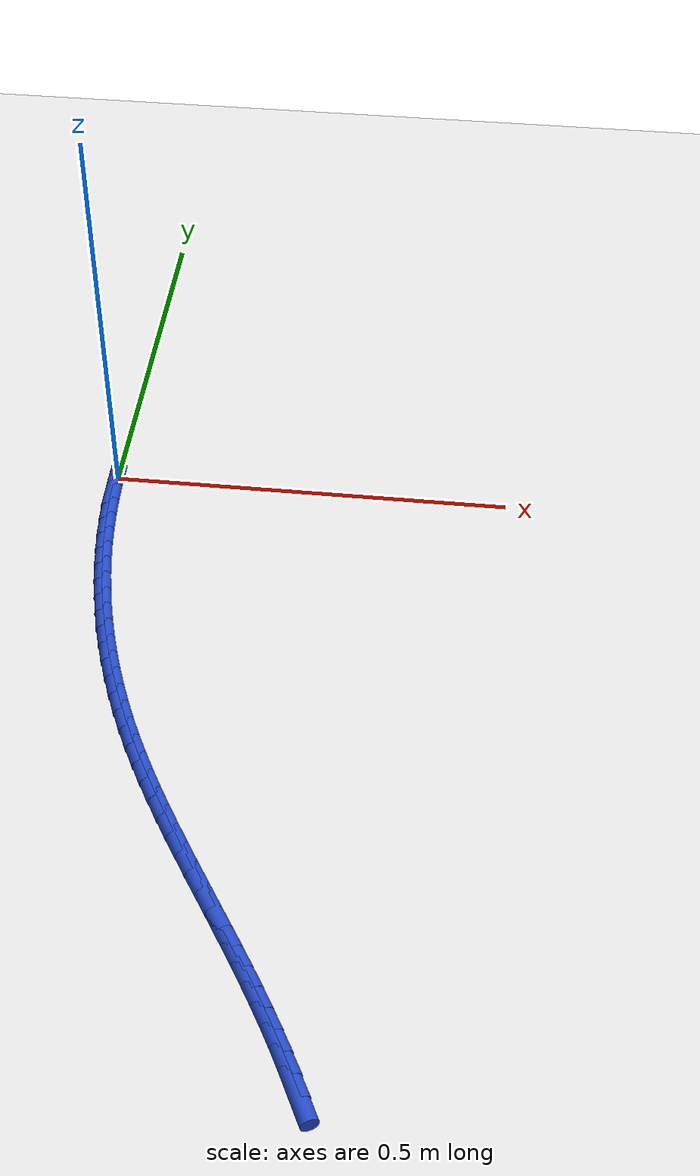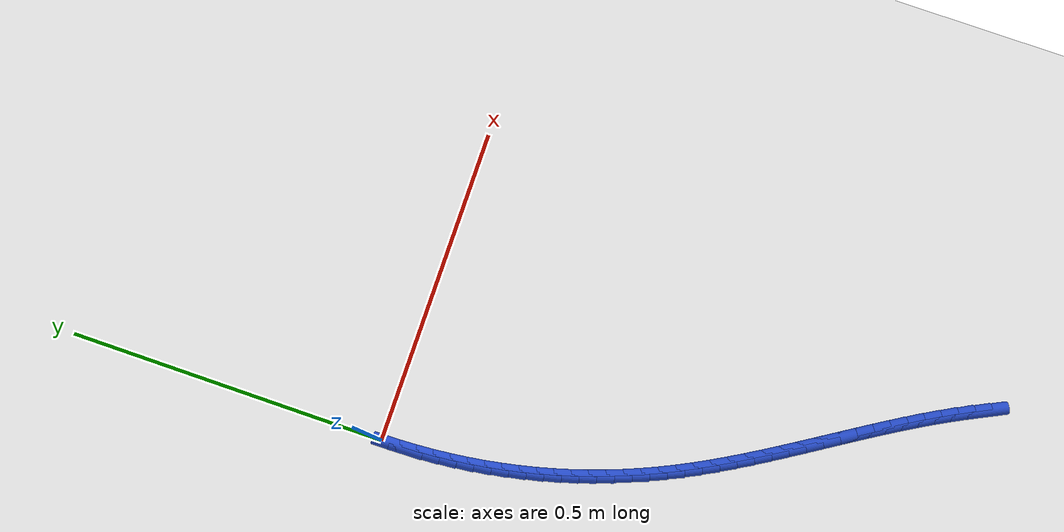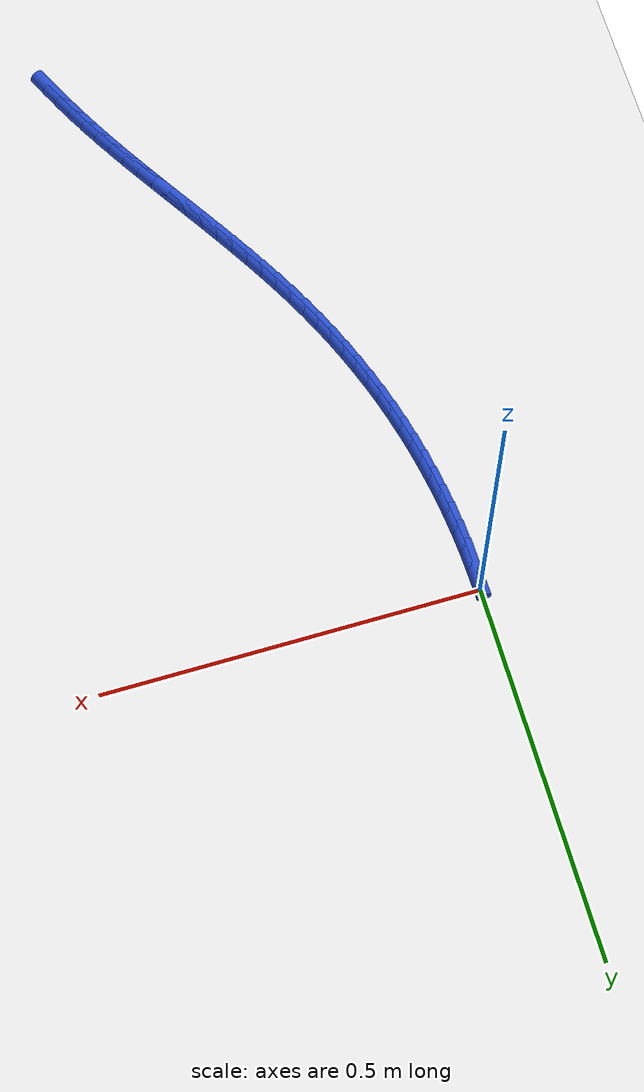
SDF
<sdf version="1.6">
 <world name="default">
  <model name="ground_plane">
   <static>1</static>
   <link name="link">
    <collision name="collision">
     <geometry><plane><normal>0 0 1</normal><size>100 100</size></plane></geometry>
     <surface><friction><ode><mu>100</mu><mu2>50</mu2></ode></friction></surface>
    </collision>
    <visual name="visual">
     <cast_shadows>0</cast_shadows>
     <geometry><plane><normal>0 0 1</normal><size>100 100</size></plane></geometry>
     <material>
      <script><uri>file://media/materials/scripts/gazebo.material</uri><name>Gazebo/WhiteGlow</name></script>
     </material>
    </visual>
   </link>
  </model>
  <model name="line">
   <link name="link_245">
    <pose>0.33744444622579134 -0.8474971103697072 0.01 0 1.57 -1.1139356308123307</pose>
    <collision name="collision">
     <geometry><cylinder><radius>0.01</radius><length>0.08</length></cylinder></geometry>
    </collision>
    <visual name="visual">
     <material>
      <script><name>Gazebo/Blue</name><uri>file://media/materials/scripts/gazebo.material</uri></script>
     </material>
     <geometry><cylinder><radius>0.01</radius><length>0.08</length></cylinder></geometry>
    </visual>
   </link>
   <link name="link_246">
    <pose>0.32620501806073826 -0.824631594547452 0.01 0 1.57 -1.0954702936262624</pose>
    <collision name="collision">
     <geometry><cylinder><radius>0.01</radius><length>0.08</length></cylinder></geometry>
    </collision>
    <visual name="visual">
     <material>
      <script><name>Gazebo/Blue</name><uri>file://media/materials/scripts/gazebo.material</uri></script>
     </material>
     <geometry><cylinder><radius>0.01</radius><length>0.08</length></cylinder></geometry>
    </visual>
   </link>
   <link name="link_247">
    <pose>0.31449951314770974 -0.8018885234023055 0.01 0 1.57 -1.0739820204588286</pose>
    <collision name="collision">
     <geometry><cylinder><radius>0.01</radius><length>0.08</length></cylinder></geometry>
    </collision>
    <visual name="visual">
     <material>
      <script><name>Gazebo/Blue</name><uri>file://media/materials/scripts/gazebo.material</uri></script>
     </material>
     <geometry><cylinder><radius>0.01</radius><length>0.08</length></cylinder></geometry>
    </visual>
   </link>
   <link name="link_248">
    <pose>0.30222004861973284 -0.7792399227215762 0.01 0 1.57 -1.055612878758946</pose>
    <collision name="collision">
     <geometry><cylinder><radius>0.01</radius><length>0.08</length></cylinder></geometry>
    </collision>
    <visual name="visual">
     <material>
      <script><name>Gazebo/Blue</name><uri>file://media/materials/scripts/gazebo.material</uri></script>
     </material>
     <geometry><cylinder><radius>0.01</radius><length>0.08</length></cylinder></geometry>
    </visual>
   </link>
   <link name="link_249">
    <pose>0.28943777816159333 -0.7566637381675304 0.01 0 1.57 -1.0404224061252385</pose>
    <collision name="collision">
     <geometry><cylinder><radius>0.01</radius><length>0.08</length></cylinder></geometry>
    </collision>
    <visual name="visual">
     <material>
      <script><name>Gazebo/Blue</name><uri>file://media/materials/scripts/gazebo.material</uri></script>
     </material>
     <geometry><cylinder><radius>0.01</radius><length>0.08</length></cylinder></geometry>
    </visual>
   </link>
   <link name="link_250">
    <pose>0.2762282843455414 -0.7341380618443741 0.01 0 1.57 -1.0283238977554374</pose>
    <collision name="collision">
     <geometry><cylinder><radius>0.01</radius><length>0.08</length></cylinder></geometry>
    </collision>
    <visual name="visual">
     <material>
      <script><name>Gazebo/Blue</name><uri>file://media/materials/scripts/gazebo.material</uri></script>
     </material>
     <geometry><cylinder><radius>0.01</radius><length>0.08</length></cylinder></geometry>
    </visual>
   </link>
   <link name="link_251">
    <pose>0.26266714974382704 -0.7116409858563133 0.01 0 1.57 -1.0192394948236012</pose>
    <collision name="collision">
     <geometry><cylinder><radius>0.01</radius><length>0.08</length></cylinder></geometry>
    </collision>
    <visual name="visual">
     <material>
      <script><name>Gazebo/Blue</name><uri>file://media/materials/scripts/gazebo.material</uri></script>
     </material>
     <geometry><cylinder><radius>0.01</radius><length>0.08</length></cylinder></geometry>
    </visual>
   </link>
   <link name="link_252">
    <pose>0.24882995692869972 -0.689150602307553 0.01 0 1.57 -1.0131027560665729</pose>
    <collision name="collision">
     <geometry><cylinder><radius>0.01</radius><length>0.08</length></cylinder></geometry>
    </collision>
    <visual name="visual">
     <material>
      <script><name>Gazebo/Blue</name><uri>file://media/materials/scripts/gazebo.material</uri></script>
     </material>
     <geometry><cylinder><radius>0.01</radius><length>0.08</length></cylinder></geometry>
    </visual>
   </link>
   <link name="link_253">
    <pose>0.2347922884724106 -0.6666450033023011 0.01 0 1.57 -1.009860285875462</pose>
    <collision name="collision">
     <geometry><cylinder><radius>0.01</radius><length>0.08</length></cylinder></geometry>
    </collision>
    <visual name="visual">
     <material>
      <script><name>Gazebo/Blue</name><uri>file://media/materials/scripts/gazebo.material</uri></script>
     </material>
     <geometry><cylinder><radius>0.01</radius><length>0.08</length></cylinder></geometry>
    </visual>
   </link>
   <link name="link_254">
    <pose>0.22062972694720923 -0.6441022809447627 0.01 0 1.57 -1.0094726011756456</pose>
    <collision name="collision">
     <geometry><cylinder><radius>0.01</radius><length>0.08</length></cylinder></geometry>
    </collision>
    <visual name="visual">
     <material>
      <script><name>Gazebo/Blue</name><uri>file://media/materials/scripts/gazebo.material</uri></script>
     </material>
     <geometry><cylinder><radius>0.01</radius><length>0.08</length></cylinder></geometry>
    </visual>
   </link>
   <link name="link_255">
    <pose>0.20641785492534567 -0.6215005273391437 0.01 0 1.57 -1.0119143697049635</pose>
    <collision name="collision">
     <geometry><cylinder><radius>0.01</radius><length>0.08</length></cylinder></geometry>
    </collision>
    <visual name="visual">
     <material>
      <script><name>Gazebo/Blue</name><uri>file://media/materials/scripts/gazebo.material</uri></script>
     </material>
     <geometry><cylinder><radius>0.01</radius><length>0.08</length></cylinder></geometry>
    </visual>
   </link>
   <link name="link_256">
    <pose>0.19223225497907004 -0.5988178345896505 0.01 0 1.57 -1.0171741029380763</pose>
    <collision name="collision">
     <geometry><cylinder><radius>0.01</radius><length>0.08</length></cylinder></geometry>
    </collision>
    <visual name="visual">
     <material>
      <script><name>Gazebo/Blue</name><uri>file://media/materials/scripts/gazebo.material</uri></script>
     </material>
     <geometry><cylinder><radius>0.01</radius><length>0.08</length></cylinder></geometry>
    </visual>
   </link>
   <link name="link_257">
    <pose>0.17814850968063237 -0.5760322948004888 0.01 0 1.57 -1.0252533404190365</pose>
    <collision name="collision">
     <geometry><cylinder><radius>0.01</radius><length>0.08</length></cylinder></geometry>
    </collision>
    <visual name="visual">
     <material>
      <script><name>Gazebo/Blue</name><uri>file://media/materials/scripts/gazebo.material</uri></script>
     </material>
     <geometry><cylinder><radius>0.01</radius><length>0.08</length></cylinder></geometry>
    </visual>
   </link>
   <link name="link_258">
    <pose>0.16424220160228287 -0.5531220000758649 0.01 0 1.57 -1.0361653198954797</pose>
    <collision name="collision">
     <geometry><cylinder><radius>0.01</radius><length>0.08</length></cylinder></geometry>
    </collision>
    <visual name="visual">
     <material>
      <script><name>Gazebo/Blue</name><uri>file://media/materials/scripts/gazebo.material</uri></script>
     </material>
     <geometry><cylinder><radius>0.01</radius><length>0.08</length></cylinder></geometry>
    </visual>
   </link>
   <link name="link_259">
    <pose>0.15058891331627133 -0.5300650425199845 0.01 0 1.57 -1.0499330903189588</pose>
    <collision name="collision">
     <geometry><cylinder><radius>0.01</radius><length>0.08</length></cylinder></geometry>
    </collision>
    <visual name="visual">
     <material>
      <script><name>Gazebo/Blue</name><uri>file://media/materials/scripts/gazebo.material</uri></script>
     </material>
     <geometry><cylinder><radius>0.01</radius><length>0.08</length></cylinder></geometry>
    </visual>
   </link>
   <link name="link_260">
    <pose>0.13726422739484812 -0.506839514237054 0.01 0 1.57 -1.0665869939021737</pose>
    <collision name="collision">
     <geometry><cylinder><radius>0.01</radius><length>0.08</length></cylinder></geometry>
    </collision>
    <visual name="visual">
     <material>
      <script><name>Gazebo/Blue</name><uri>file://media/materials/scripts/gazebo.material</uri></script>
     </material>
     <geometry><cylinder><radius>0.01</radius><length>0.08</length></cylinder></geometry>
    </visual>
   </link>
   <link name="link_261">
    <pose>0.12434372641026276 -0.48342350733127815 0.01 0 1.57 -1.0861614215821573</pose>
    <collision name="collision">
     <geometry><cylinder><radius>0.01</radius><length>0.08</length></cylinder></geometry>
    </collision>
    <visual name="visual">
     <material>
      <script><name>Gazebo/Blue</name><uri>file://media/materials/scripts/gazebo.material</uri></script>
     </material>
     <geometry><cylinder><radius>0.01</radius><length>0.08</length></cylinder></geometry>
    </visual>
   </link>
   <link name="link_262">
    <pose>0.11190299293476615 -0.45979511390686495 0.01 0 1.57 -1.1086907377096715</pose>
    <collision name="collision">
     <geometry><cylinder><radius>0.01</radius><length>0.08</length></cylinder></geometry>
    </collision>
    <visual name="visual">
     <material>
      <script><name>Gazebo/Blue</name><uri>file://media/materials/scripts/gazebo.material</uri></script>
     </material>
     <geometry><cylinder><radius>0.01</radius><length>0.08</length></cylinder></geometry>
    </visual>
   </link>
   <link name="link_263">
    <pose>0.10001760954060798 -0.4359324260680195 0.01 0 1.57 -1.1338453506455488</pose>
    <collision name="collision">
     <geometry><cylinder><radius>0.01</radius><length>0.08</length></cylinder></geometry>
    </collision>
    <visual name="visual">
     <material>
      <script><name>Gazebo/Blue</name><uri>file://media/materials/scripts/gazebo.material</uri></script>
     </material>
     <geometry><cylinder><radius>0.01</radius><length>0.08</length></cylinder></geometry>
    </visual>
   </link>
   <link name="link_264">
    <pose>0.08875446290973052 -0.4118174922138351 0.01 0 1.57 -1.1597830639850157</pose>
    <collision name="collision">
     <geometry><cylinder><radius>0.01</radius><length>0.08</length></cylinder></geometry>
    </collision>
    <visual name="visual">
     <material>
      <script><name>Gazebo/Blue</name><uri>file://media/materials/scripts/gazebo.material</uri></script>
     </material>
     <geometry><cylinder><radius>0.01</radius><length>0.08</length></cylinder></geometry>
    </visual>
   </link>
   <link name="link_265">
    <pose>0.07813545479951729 -0.38745282715003365 0.01 0 1.57 -1.1859056560007415</pose>
    <collision name="collision">
     <geometry><cylinder><radius>0.01</radius><length>0.08</length></cylinder></geometry>
    </collision>
    <visual name="visual">
     <material>
      <script><name>Gazebo/Blue</name><uri>file://media/materials/scripts/gazebo.material</uri></script>
     </material>
     <geometry><cylinder><radius>0.01</radius><length>0.08</length></cylinder></geometry>
    </visual>
   </link>
   <link name="link_266">
    <pose>0.06816798383962118 -0.36284754404639863 0.01 0 1.57 -1.2122110606415544</pose>
    <collision name="collision">
     <geometry><cylinder><radius>0.01</radius><length>0.08</length></cylinder></geometry>
    </collision>
    <visual name="visual">
     <material>
      <script><name>Gazebo/Blue</name><uri>file://media/materials/scripts/gazebo.material</uri></script>
     </material>
     <geometry><cylinder><radius>0.01</radius><length>0.08</length></cylinder></geometry>
    </visual>
   </link>
   <link name="link_267">
    <pose>0.05885944158883703 -0.33801075928968133 0.01 0 1.57 -1.2386965988449448</pose>
    <collision name="collision">
     <geometry><cylinder><radius>0.01</radius><length>0.08</length></cylinder></geometry>
    </collision>
    <visual name="visual">
     <material>
      <script><name>Gazebo/Blue</name><uri>file://media/materials/scripts/gazebo.material</uri></script>
     </material>
     <geometry><cylinder><radius>0.01</radius><length>0.08</length></cylinder></geometry>
    </visual>
   </link>
   <link name="link_268">
    <pose>0.050217219605959776 -0.3129515892666331 0.01 0 1.57 -1.2653586409813715</pose>
    <collision name="collision">
     <geometry><cylinder><radius>0.01</radius><length>0.08</length></cylinder></geometry>
    </collision>
    <visual name="visual">
     <material>
      <script><name>Gazebo/Blue</name><uri>file://media/materials/scripts/gazebo.material</uri></script>
     </material>
     <geometry><cylinder><radius>0.01</radius><length>0.08</length></cylinder></geometry>
    </visual>
   </link>
   <link name="link_269">
    <pose>0.04224870944978426 -0.28767915036400493 0.01 0 1.57 -1.2921925658141111</pose>
    <collision name="collision">
     <geometry><cylinder><radius>0.01</radius><length>0.08</length></cylinder></geometry>
    </collision>
    <visual name="visual">
     <material>
      <script><name>Gazebo/Blue</name><uri>file://media/materials/scripts/gazebo.material</uri></script>
     </material>
     <geometry><cylinder><radius>0.01</radius><length>0.08</length></cylinder></geometry>
    </visual>
   </link>
   <link name="link_270">
    <pose>0.034961302679105195 -0.2622025589685477 0.01 0 1.57 -1.3191927250487734</pose>
    <collision name="collision">
     <geometry><cylinder><radius>0.01</radius><length>0.08</length></cylinder></geometry>
    </collision>
    <visual name="visual">
     <material>
      <script><name>Gazebo/Blue</name><uri>file://media/materials/scripts/gazebo.material</uri></script>
     </material>
     <geometry><cylinder><radius>0.01</radius><length>0.08</length></cylinder></geometry>
    </visual>
   </link>
   <link name="link_271">
    <pose>0.028362390852717908 -0.23653093146701415 0.01 0 1.57 -1.3463432213384257</pose>
    <collision name="collision">
     <geometry><cylinder><radius>0.01</radius><length>0.08</length></cylinder></geometry>
    </collision>
    <visual name="visual">
     <material>
      <script><name>Gazebo/Blue</name><uri>file://media/materials/scripts/gazebo.material</uri></script>
     </material>
     <geometry><cylinder><radius>0.01</radius><length>0.08</length></cylinder></geometry>
    </visual>
   </link>
   <link name="link_272">
    <pose>0.02245917990189613 -0.21067366664656345 0.01 0 1.57 -1.3733834126890785</pose>
    <collision name="collision">
     <geometry><cylinder><radius>0.01</radius><length>0.08</length></cylinder></geometry>
    </collision>
    <visual name="visual">
     <material>
      <script><name>Gazebo/Blue</name><uri>file://media/materials/scripts/gazebo.material</uri></script>
     </material>
     <geometry><cylinder><radius>0.01</radius><length>0.08</length></cylinder></geometry>
    </visual>
   </link>
   <link name="link_273">
    <pose>0.017253611303386637 -0.18464817225823854 0.01 0 1.57 -1.4000516414038027</pose>
    <collision name="collision">
     <geometry><cylinder><radius>0.01</radius><length>0.08</length></cylinder></geometry>
    </collision>
    <visual name="visual">
     <material>
      <script><name>Gazebo/Blue</name><uri>file://media/materials/scripts/gazebo.material</uri></script>
     </material>
     <geometry><cylinder><radius>0.01</radius><length>0.08</length></cylinder></geometry>
    </visual>
   </link>
   <link name="link_274">
    <pose>0.012741741652354008 -0.15848080889022834 0.01 0 1.57 -1.4263722688183573</pose>
    <collision name="collision">
     <geometry><cylinder><radius>0.01</radius><length>0.08</length></cylinder></geometry>
    </collision>
    <visual name="visual">
     <material>
      <script><name>Gazebo/Blue</name><uri>file://media/materials/scripts/gazebo.material</uri></script>
     </material>
     <geometry><cylinder><radius>0.01</radius><length>0.08</length></cylinder></geometry>
    </visual>
   </link>
   <link name="link_275">
    <pose>0.008919317348027318 -0.13219840904059046 0.01 0 1.57 -1.4523858259873692</pose>
    <collision name="collision">
     <geometry><cylinder><radius>0.01</radius><length>0.08</length></cylinder></geometry>
    </collision>
    <visual name="visual">
     <material>
      <script><name>Gazebo/Blue</name><uri>file://media/materials/scripts/gazebo.material</uri></script>
     </material>
     <geometry><cylinder><radius>0.01</radius><length>0.08</length></cylinder></geometry>
    </visual>
   </link>
   <link name="link_276">
    <pose>0.0057820847896356145 -0.10582780520738244 0.01 0 1.57 -1.4781335529212118</pose>
    <collision name="collision">
     <geometry><cylinder><radius>0.01</radius><length>0.08</length></cylinder></geometry>
    </collision>
    <visual name="visual">
     <material>
      <script><name>Gazebo/Blue</name><uri>file://media/materials/scripts/gazebo.material</uri></script>
     </material>
     <geometry><cylinder><radius>0.01</radius><length>0.08</length></cylinder></geometry>
    </visual>
   </link>
   <link name="link_277">
    <pose>0.003325790376407968 -0.07939582988866188 0.01 0 1.57 -1.503657333918082</pose>
    <collision name="collision">
     <geometry><cylinder><radius>0.01</radius><length>0.08</length></cylinder></geometry>
    </collision>
    <visual name="visual">
     <material>
      <script><name>Gazebo/Blue</name><uri>file://media/materials/scripts/gazebo.material</uri></script>
     </material>
     <geometry><cylinder><radius>0.01</radius><length>0.08</length></cylinder></geometry>
    </visual>
   </link>
   <link name="link_278">
    <pose>0.00154618050757344 -0.05292931558248633 0.01 0 1.57 -1.5289996625680868</pose>
    <collision name="collision">
     <geometry><cylinder><radius>0.01</radius><length>0.08</length></cylinder></geometry>
    </collision>
    <visual name="visual">
     <material>
      <script><name>Gazebo/Blue</name><uri>file://media/materials/scripts/gazebo.material</uri></script>
     </material>
     <geometry><cylinder><radius>0.01</radius><length>0.08</length></cylinder></geometry>
    </visual>
   </link>
   <link name="link_279">
    <pose>0.0004390015823610711 -0.026455094786912613 0.01 0 1.57 -1.5542036327643036</pose>
    <collision name="collision">
     <geometry><cylinder><radius>0.01</radius><length>0.08</length></cylinder></geometry>
    </collision>
    <visual name="visual">
     <material>
      <script><name>Gazebo/Blue</name><uri>file://media/materials/scripts/gazebo.material</uri></script>
     </material>
     <geometry><cylinder><radius>0.01</radius><length>0.08</length></cylinder></geometry>
    </visual>
   </link>
  </model>
 </world>
</sdf>
